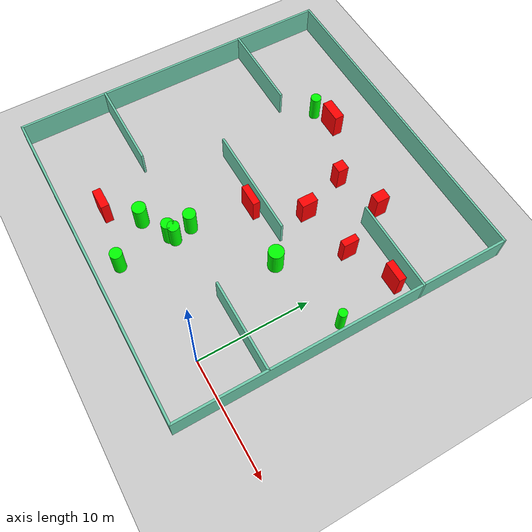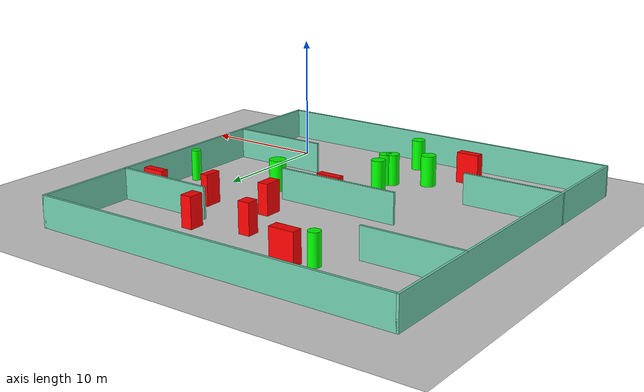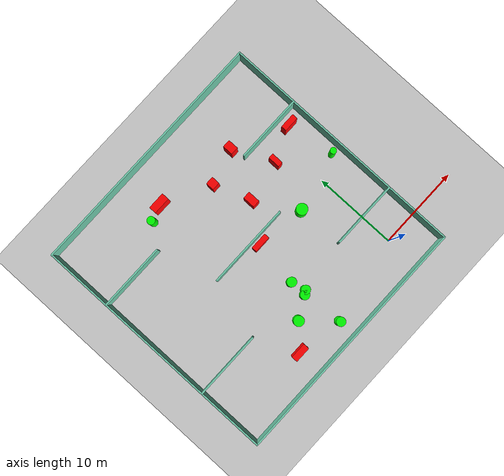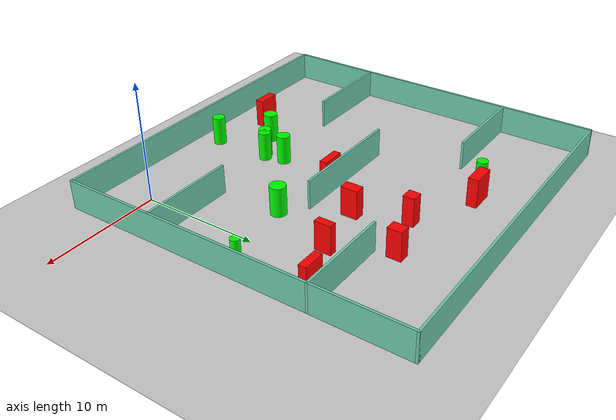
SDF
<sdf version="1.7">
 <world name="default">
  <light name="sun" type="directional">
   <pose>0 0 10 0 -0 0</pose>
   <diffuse>0.8 0.8 0.8 1</diffuse>
   <specular>0.2 0.2 0.2 1</specular>
   <attenuation>
    <range>1000</range>
    <constant>0.9</constant>
    <linear>0.01</linear>
    <quadratic>0.001</quadratic>
   </attenuation>
   <direction>-0.5 0.1 -0.9</direction>
   <spot><inner_angle>0</inner_angle><outer_angle>0</outer_angle><falloff>0</falloff></spot>
  </light>
  <model name="ground_plane">
   <static>1</static>
   <link name="link">
    <collision name="collision">
     <geometry><plane><normal>0 0 1</normal><size>100 100</size></plane></geometry>
     <surface>
      <contact><collide_bitmask>65535</collide_bitmask></contact>
      <friction><ode><mu>100</mu><mu2>50</mu2></ode></friction>
     </surface>
    </collision>
    <visual name="visual">
     <cast_shadows>0</cast_shadows>
     <geometry><plane><normal>0 0 1</normal><size>100 100</size></plane></geometry>
     <material>
      <script><uri>file://media/materials/scripts/gazebo.material</uri><name>Gazebo/Grey</name></script>
     </material>
    </visual>
   </link>
  </model>
  <gravity>0 0 -9.8</gravity>
  <magnetic_field>6e-06 2.3e-05 -4.2e-05</magnetic_field>
  <atmosphere type="adiabatic"/>
  <physics type="ode">
   <max_step_size>0.001</max_step_size>
   <real_time_factor>1</real_time_factor>
   <real_time_update_rate>1000</real_time_update_rate>
  </physics>
  <scene><ambient>0.4 0.4 0.4 1</ambient><background>0.7 0.7 0.7 1</background><shadows>1</shadows></scene>
  <spherical_coordinates>
   <surface_model>EARTH_WGS84</surface_model>
   <latitude_deg>0</latitude_deg>
   <longitude_deg>0</longitude_deg>
   <elevation>0</elevation>
   <heading_deg>0</heading_deg>
  </spherical_coordinates>
  <model name="my_base_walls">
   <link name="Wall_10">
    <collision name="Wall_10_Collision">
     <geometry><box><size>8.2 0.2 2.5</size></box></geometry>
     <pose>0 0 1.25 0 -0 0</pose>
    </collision>
    <visual name="Wall_10_Visual">
     <pose>0 0 1.25 0 -0 0</pose>
     <geometry><box><size>8.2 0.2 2.5</size></box></geometry>
     <material>
      <script><uri>file://media/materials/scripts/gazebo.material</uri><name>Gazebo/Grey</name></script>
      <ambient>0.435294 0.796078 0.67451 1</ambient>
     </material>
     <meta><layer>0</layer></meta>
    </visual>
    <pose>-11 -7 0 0 -0 0</pose>
   </link>
   <link name="Wall_12">
    <collision name="Wall_12_Collision">
     <geometry><box><size>8.2 0.2 2.5</size></box></geometry>
     <pose>0 0 1.25 0 -0 0</pose>
    </collision>
    <visual name="Wall_12_Visual">
     <pose>0 0 1.25 0 -0 0</pose>
     <geometry><box><size>8.2 0.2 2.5</size></box></geometry>
     <material>
      <script><uri>file://media/materials/scripts/gazebo.material</uri><name>Gazebo/Grey</name></script>
      <ambient>0.435294 0.796078 0.67451 1</ambient>
     </material>
     <meta><layer>0</layer></meta>
    </visual>
    <pose>-11 7 0 0 -0 0</pose>
   </link>
   <link name="Wall_14">
    <collision name="Wall_14_Collision">
     <geometry><box><size>8.2 0.2 2.5</size></box></geometry>
     <pose>0 0 1.25 0 -0 0</pose>
    </collision>
    <visual name="Wall_14_Visual">
     <pose>0 0 1.25 0 -0 0</pose>
     <geometry><box><size>8.2 0.2 2.5</size></box></geometry>
     <material>
      <script><uri>file://media/materials/scripts/gazebo.material</uri><name>Gazebo/Grey</name></script>
      <ambient>0.435294 0.796078 0.67451 1</ambient>
     </material>
     <meta><layer>0</layer></meta>
    </visual>
    <pose>11 7 0 0 -0 3.14159</pose>
   </link>
   <link name="Wall_16">
    <collision name="Wall_16_Collision">
     <geometry><box><size>10.2 0.2 2.5</size></box></geometry>
     <pose>0 0 1.25 0 -0 0</pose>
    </collision>
    <visual name="Wall_16_Visual">
     <pose>0 0 1.25 0 -0 0</pose>
     <geometry><box><size>10.2 0.2 2.5</size></box></geometry>
     <material>
      <script><uri>file://media/materials/scripts/gazebo.material</uri><name>Gazebo/Grey</name></script>
      <ambient>0.435294 0.796078 0.67451 1</ambient>
     </material>
     <meta><layer>0</layer></meta>
    </visual>
    <pose>0 0 0 0 -0 3.14159</pose>
   </link>
   <link name="Wall_2">
    <collision name="Wall_2_Collision">
     <geometry><box><size>30.2 0.2 2.5</size></box></geometry>
     <pose>0 0 1.25 0 -0 0</pose>
    </collision>
    <visual name="Wall_2_Visual">
     <pose>0 0 1.25 0 -0 0</pose>
     <geometry><box><size>30.2 0.2 2.5</size></box></geometry>
     <material>
      <script><uri>file://media/materials/scripts/gazebo.material</uri><name>Gazebo/Grey</name></script>
      <ambient>0.435294 0.796078 0.67451 1</ambient>
     </material>
     <meta><layer>0</layer></meta>
    </visual>
    <pose>0 -15 0 0 -0 3.14159</pose>
   </link>
   <link name="Wall_3">
    <collision name="Wall_3_Collision">
     <geometry><box><size>30.2 0.2 2.5</size></box></geometry>
     <pose>0 0 1.25 0 -0 0</pose>
    </collision>
    <visual name="Wall_3_Visual">
     <pose>0 0 1.25 0 -0 0</pose>
     <geometry><box><size>30.2 0.2 2.5</size></box></geometry>
     <material>
      <script><uri>file://media/materials/scripts/gazebo.material</uri><name>Gazebo/Grey</name></script>
      <ambient>0.435294 0.796078 0.67451 1</ambient>
     </material>
     <meta><layer>0</layer></meta>
    </visual>
    <pose>-15 0 0 0 -0 1.5708</pose>
   </link>
   <link name="Wall_4">
    <collision name="Wall_4_Collision">
     <geometry><box><size>30.2 0.2 2.5</size></box></geometry>
     <pose>0 0 1.25 0 -0 0</pose>
    </collision>
    <visual name="Wall_4_Visual">
     <pose>0 0 1.25 0 -0 0</pose>
     <geometry><box><size>30.2 0.2 2.5</size></box></geometry>
     <material>
      <script><uri>file://media/materials/scripts/gazebo.material</uri><name>Gazebo/Grey</name></script>
      <ambient>0.435294 0.796078 0.67451 1</ambient>
     </material>
     <meta><layer>0</layer></meta>
    </visual>
    <pose>0 15 0 0 -0 0</pose>
   </link>
   <link name="Wall_6">
    <collision name="Wall_6_Collision">
     <geometry><box><size>30.2 0.2 2.5</size></box></geometry>
     <pose>0 0 1.25 0 -0 0</pose>
    </collision>
    <visual name="Wall_6_Visual">
     <pose>0 0 1.25 0 -0 0</pose>
     <geometry><box><size>30.2 0.2 2.5</size></box></geometry>
     <material>
      <script><uri>file://media/materials/scripts/gazebo.material</uri><name>Gazebo/Grey</name></script>
      <ambient>0.435294 0.796078 0.67451 1</ambient>
     </material>
     <meta><layer>0</layer></meta>
    </visual>
    <pose>15 0 0 0 -0 1.5708</pose>
   </link>
   <link name="Wall_8">
    <collision name="Wall_8_Collision">
     <geometry><box><size>8.2 0.2 2.5</size></box></geometry>
     <pose>0 0 1.25 0 -0 0</pose>
    </collision>
    <visual name="Wall_8_Visual">
     <pose>0 0 1.25 0 -0 0</pose>
     <geometry><box><size>8.2 0.2 2.5</size></box></geometry>
     <material>
      <script><uri>file://media/materials/scripts/gazebo.material</uri><name>Gazebo/Grey</name></script>
      <ambient>0.435294 0.796078 0.67451 1</ambient>
     </material>
     <meta><layer>0</layer></meta>
    </visual>
    <pose>11 -7 0 0 -0 3.14159</pose>
   </link>
   <static>1</static>
   <pose>-11 11 0 0 -0 0</pose>
  </model>
  <model name="cylinder1">
   <static>1</static>
   <link name="link">
    <inertial>
     <mass>1</mass>
     <inertia><ixx>0.5</ixx><ixy>0</ixy><ixz>0</ixz><iyy>0.5</iyy><iyz>0</iyz><izz>1</izz></inertia>
    </inertial>
    <collision name="collision">
     <geometry><cylinder><radius>0.6102364128419271</radius><length>2.5</length></cylinder></geometry>
    </collision>
    <visual name="visual">
     <geometry><cylinder><radius>0.6102364128419271</radius><length>2.5</length></cylinder></geometry>
     <material>
      <ambient>0 1 0 1</ambient>
      <diffuse>0 1 0 1</diffuse>
      <specular>0.1 0.1 0.1 1</specular>
      <emissive>0 0 0 0</emissive>
     </material>
    </visual>
   </link>
   <pose>-13.288478711304903 1.5432368243101147 1.25 0 0 0</pose>
  </model>
  <model name="cylinder2">
   <static>1</static>
   <link name="link">
    <inertial>
     <mass>1</mass>
     <inertia><ixx>0.5</ixx><ixy>0</ixy><ixz>0</ixz><iyy>0.5</iyy><iyz>0</iyz><izz>1</izz></inertia>
    </inertial>
    <collision name="collision">
     <geometry><cylinder><radius>0.528931583499042</radius><length>2.5</length></cylinder></geometry>
    </collision>
    <visual name="visual">
     <geometry><cylinder><radius>0.528931583499042</radius><length>2.5</length></cylinder></geometry>
     <material>
      <ambient>0 1 0 1</ambient>
      <diffuse>0 1 0 1</diffuse>
      <specular>0.1 0.1 0.1 1</specular>
      <emissive>0 0 0 0</emissive>
     </material>
    </visual>
   </link>
   <pose>-10.293470751198072 3.2453936870340208 1.25 0 0 0</pose>
  </model>
  <model name="cylinder3">
   <static>1</static>
   <link name="link">
    <inertial>
     <mass>1</mass>
     <inertia><ixx>0.5</ixx><ixy>0</ixy><ixz>0</ixz><iyy>0.5</iyy><iyz>0</iyz><izz>1</izz></inertia>
    </inertial>
    <collision name="collision">
     <geometry><cylinder><radius>0.5652001706771371</radius><length>2.5</length></cylinder></geometry>
    </collision>
    <visual name="visual">
     <geometry><cylinder><radius>0.5652001706771371</radius><length>2.5</length></cylinder></geometry>
     <material>
      <ambient>0 1 0 1</ambient>
      <diffuse>0 1 0 1</diffuse>
      <specular>0.1 0.1 0.1 1</specular>
      <emissive>0 0 0 0</emissive>
     </material>
    </visual>
   </link>
   <pose>-10.708160396753412 4.926514522194241 1.25 0 0 0</pose>
  </model>
  <model name="cylinder4">
   <static>1</static>
   <link name="link">
    <inertial>
     <mass>1</mass>
     <inertia><ixx>0.5</ixx><ixy>0</ixy><ixz>0</ixz><iyy>0.5</iyy><iyz>0</iyz><izz>1</izz></inertia>
    </inertial>
    <collision name="collision">
     <geometry><cylinder><radius>0.4746966428981536</radius><length>2.5</length></cylinder></geometry>
    </collision>
    <visual name="visual">
     <geometry><cylinder><radius>0.4746966428981536</radius><length>2.5</length></cylinder></geometry>
     <material>
      <ambient>0 1 0 1</ambient>
      <diffuse>0 1 0 1</diffuse>
      <specular>0.1 0.1 0.1 1</specular>
      <emissive>0 0 0 0</emissive>
     </material>
    </visual>
   </link>
   <pose>-16.062996840979423 20.629727315066457 1.25 0 0 0</pose>
  </model>
  <model name="cylinder5">
   <static>1</static>
   <link name="link">
    <inertial>
     <mass>1</mass>
     <inertia><ixx>0.5</ixx><ixy>0</ixy><ixz>0</ixz><iyy>0.5</iyy><iyz>0</iyz><izz>1</izz></inertia>
    </inertial>
    <collision name="collision">
     <geometry><cylinder><radius>0.5425497366575273</radius><length>2.5</length></cylinder></geometry>
    </collision>
    <visual name="visual">
     <geometry><cylinder><radius>0.5425497366575273</radius><length>2.5</length></cylinder></geometry>
     <material>
      <ambient>0 1 0 1</ambient>
      <diffuse>0 1 0 1</diffuse>
      <specular>0.1 0.1 0.1 1</specular>
      <emissive>0 0 0 0</emissive>
     </material>
    </visual>
   </link>
   <pose>-10.772464013114352 2.92856817543465 1.25 0 0 0</pose>
  </model>
  <model name="cylinder6">
   <static>1</static>
   <link name="link">
    <inertial>
     <mass>1</mass>
     <inertia><ixx>0.5</ixx><ixy>0</ixy><ixz>0</ixz><iyy>0.5</iyy><iyz>0</iyz><izz>1</izz></inertia>
    </inertial>
    <collision name="collision">
     <geometry><cylinder><radius>0.6706606098673595</radius><length>2.5</length></cylinder></geometry>
    </collision>
    <visual name="visual">
     <geometry><cylinder><radius>0.6706606098673595</radius><length>2.5</length></cylinder></geometry>
     <material>
      <ambient>0 1 0 1</ambient>
      <diffuse>0 1 0 1</diffuse>
      <specular>0.1 0.1 0.1 1</specular>
      <emissive>0 0 0 0</emissive>
     </material>
    </visual>
   </link>
   <pose>-4.134569459134433 9.407700649315606 1.25 0 0 0</pose>
  </model>
  <model name="cylinder7">
   <static>1</static>
   <link name="link">
    <inertial>
     <mass>1</mass>
     <inertia><ixx>0.5</ixx><ixy>0</ixy><ixz>0</ixz><iyy>0.5</iyy><iyz>0</iyz><izz>1</izz></inertia>
    </inertial>
    <collision name="collision">
     <geometry><cylinder><radius>0.3765933177871764</radius><length>2.5</length></cylinder></geometry>
    </collision>
    <visual name="visual">
     <geometry><cylinder><radius>0.3765933177871764</radius><length>2.5</length></cylinder></geometry>
     <material>
      <ambient>0 1 0 1</ambient>
      <diffuse>0 1 0 1</diffuse>
      <specular>0.1 0.1 0.1 1</specular>
      <emissive>0 0 0 0</emissive>
     </material>
    </visual>
   </link>
   <pose>2.8900307833703636 11.18326344092256 1.25 0 0 0</pose>
  </model>
  <model name="cylinder8">
   <static>1</static>
   <link name="link">
    <inertial>
     <mass>1</mass>
     <inertia><ixx>0.5</ixx><ixy>0</ixy><ixz>0</ixz><iyy>0.5</iyy><iyz>0</iyz><izz>1</izz></inertia>
    </inertial>
    <collision name="collision">
     <geometry><cylinder><radius>0.5407304053464275</radius><length>2.5</length></cylinder></geometry>
    </collision>
    <visual name="visual">
     <geometry><cylinder><radius>0.5407304053464275</radius><length>2.5</length></cylinder></geometry>
     <material>
      <ambient>0 1 0 1</ambient>
      <diffuse>0 1 0 1</diffuse>
      <specular>0.1 0.1 0.1 1</specular>
      <emissive>0 0 0 0</emissive>
     </material>
    </visual>
   </link>
   <pose>-10.290860287536624 -1.8481871831370933 1.25 0 0 0</pose>
  </model>
  <model name="box1">
   <static>1</static>
   <link name="link">
    <inertial>
     <mass>1</mass>
     <inertia><ixx>0.083</ixx><ixy>0</ixy><ixz>0</ixz><iyy>0.083</iyy><iyz>0</iyz><izz>0.083</izz></inertia>
    </inertial>
    <collision name="collision">
     <geometry><box><size>0.9311011986921107 1.238657907187475 2.5</size></box></geometry>
    </collision>
    <visual name="visual">
     <geometry><box><size>0.9311011986921107 1.238657907187475 2.5</size></box></geometry>
     <material>
      <ambient>1 0 0 1</ambient>
      <diffuse>1 0 0 1</diffuse>
      <specular>0.1 0.1 0.1 1</specular>
      <emissive>0 0 0 0</emissive>
     </material>
    </visual>
    <sensor name="my_contact" type="contact">
     <contact><collision>box_collision</collision><topic>__default_topic__</topic></contact>
    </sensor>
   </link>
   <pose>-4.3799257955822934 19.69718308031592 1.25 0 0 0</pose>
  </model>
  <model name="box2">
   <static>1</static>
   <link name="link">
    <inertial>
     <mass>1</mass>
     <inertia><ixx>0.083</ixx><ixy>0</ixy><ixz>0</ixz><iyy>0.083</iyy><iyz>0</iyz><izz>0.083</izz></inertia>
    </inertial>
    <collision name="collision">
     <geometry><box><size>2.0366943474185675 0.6386890121781865 2.5</size></box></geometry>
    </collision>
    <visual name="visual">
     <geometry><box><size>2.0366943474185675 0.6386890121781865 2.5</size></box></geometry>
     <material>
      <ambient>1 0 0 1</ambient>
      <diffuse>1 0 0 1</diffuse>
      <specular>0.1 0.1 0.1 1</specular>
      <emissive>0 0 0 0</emissive>
     </material>
    </visual>
    <sensor name="my_contact" type="contact">
     <contact><collision>box_collision</collision><topic>__default_topic__</topic></contact>
    </sensor>
   </link>
   <pose>-9.850680277916112 10.277105274653024 1.25 0 0 0</pose>
  </model>
  <model name="box3">
   <static>1</static>
   <link name="link">
    <inertial>
     <mass>1</mass>
     <inertia><ixx>0.083</ixx><ixy>0</ixy><ixz>0</ixz><iyy>0.083</iyy><iyz>0</iyz><izz>0.083</izz></inertia>
    </inertial>
    <collision name="collision">
     <geometry><box><size>0.6156688374996554 1.408351218934792 2.5</size></box></geometry>
    </collision>
    <visual name="visual">
     <geometry><box><size>0.6156688374996554 1.408351218934792 2.5</size></box></geometry>
     <material>
      <ambient>1 0 0 1</ambient>
      <diffuse>1 0 0 1</diffuse>
      <specular>0.1 0.1 0.1 1</specular>
      <emissive>0 0 0 0</emissive>
     </material>
    </visual>
    <sensor name="my_contact" type="contact">
     <contact><collision>box_collision</collision><topic>__default_topic__</topic></contact>
    </sensor>
   </link>
   <pose>-2.104685663283572 15.119486303505777 1.25 0 0 0</pose>
  </model>
  <model name="box4">
   <static>1</static>
   <link name="link">
    <inertial>
     <mass>1</mass>
     <inertia><ixx>0.083</ixx><ixy>0</ixy><ixz>0</ixz><iyy>0.083</iyy><iyz>0</iyz><izz>0.083</izz></inertia>
    </inertial>
    <collision name="collision">
     <geometry><box><size>1.9076361519783753 0.7375641397885132 2.5</size></box></geometry>
    </collision>
    <visual name="visual">
     <geometry><box><size>1.9076361519783753 0.7375641397885132 2.5</size></box></geometry>
     <material>
      <ambient>1 0 0 1</ambient>
      <diffuse>1 0 0 1</diffuse>
      <specular>0.1 0.1 0.1 1</specular>
      <emissive>0 0 0 0</emissive>
     </material>
    </visual>
    <sensor name="my_contact" type="contact">
     <contact><collision>box_collision</collision><topic>__default_topic__</topic></contact>
    </sensor>
   </link>
   <pose>-15.689560459931922 -0.8517949781638716 1.25 0 0 0</pose>
  </model>
  <model name="box5">
   <static>1</static>
   <link name="link">
    <inertial>
     <mass>1</mass>
     <inertia><ixx>0.083</ixx><ixy>0</ixy><ixz>0</ixz><iyy>0.083</iyy><iyz>0</iyz><izz>0.083</izz></inertia>
    </inertial>
    <collision name="collision">
     <geometry><box><size>2.0722934884359496 0.8808914945556814 2.5</size></box></geometry>
    </collision>
    <visual name="visual">
     <geometry><box><size>2.0722934884359496 0.8808914945556814 2.5</size></box></geometry>
     <material>
      <ambient>1 0 0 1</ambient>
      <diffuse>1 0 0 1</diffuse>
      <specular>0.1 0.1 0.1 1</specular>
      <emissive>0 0 0 0</emissive>
     </material>
    </visual>
    <sensor name="my_contact" type="contact">
     <contact><collision>box_collision</collision><topic>__default_topic__</topic></contact>
    </sensor>
   </link>
   <pose>-14.110426286242612 21.268835501790484 1.25 0 0 0</pose>
  </model>
  <model name="box6">
   <static>1</static>
   <link name="link">
    <inertial>
     <mass>1</mass>
     <inertia><ixx>0.083</ixx><ixy>0</ixy><ixz>0</ixz><iyy>0.083</iyy><iyz>0</iyz><izz>0.083</izz></inertia>
    </inertial>
    <collision name="collision">
     <geometry><box><size>1.8310662108164752 0.6610076948552603 2.5</size></box></geometry>
    </collision>
    <visual name="visual">
     <geometry><box><size>1.8310662108164752 0.6610076948552603 2.5</size></box></geometry>
     <material>
      <ambient>1 0 0 1</ambient>
      <diffuse>1 0 0 1</diffuse>
      <specular>0.1 0.1 0.1 1</specular>
      <emissive>0 0 0 0</emissive>
     </material>
    </visual>
    <sensor name="my_contact" type="contact">
     <contact><collision>box_collision</collision><topic>__default_topic__</topic></contact>
    </sensor>
   </link>
   <pose>1.9510536989042109 16.798605861058657 1.25 0 0 0</pose>
  </model>
  <model name="box7">
   <static>1</static>
   <link name="link">
    <inertial>
     <mass>1</mass>
     <inertia><ixx>0.083</ixx><ixy>0</ixy><ixz>0</ixz><iyy>0.083</iyy><iyz>0</iyz><izz>0.083</izz></inertia>
    </inertial>
    <collision name="collision">
     <geometry><box><size>0.884295618815073 1.462640418537535 2.5</size></box></geometry>
    </collision>
    <visual name="visual">
     <geometry><box><size>0.884295618815073 1.462640418537535 2.5</size></box></geometry>
     <material>
      <ambient>1 0 0 1</ambient>
      <diffuse>1 0 0 1</diffuse>
      <specular>0.1 0.1 0.1 1</specular>
      <emissive>0 0 0 0</emissive>
     </material>
    </visual>
    <sensor name="my_contact" type="contact">
     <contact><collision>box_collision</collision><topic>__default_topic__</topic></contact>
    </sensor>
   </link>
   <pose>-7.050655428184005 14.16740912823466 1.25 0 0 0</pose>
  </model>
  <model name="box8">
   <static>1</static>
   <link name="link">
    <inertial>
     <mass>1</mass>
     <inertia><ixx>0.083</ixx><ixy>0</ixy><ixz>0</ixz><iyy>0.083</iyy><iyz>0</iyz><izz>0.083</izz></inertia>
    </inertial>
    <collision name="collision">
     <geometry><box><size>0.9758173238309983 0.9829701098350863 2.5</size></box></geometry>
    </collision>
    <visual name="visual">
     <geometry><box><size>0.9758173238309983 0.9829701098350863 2.5</size></box></geometry>
     <material>
      <ambient>1 0 0 1</ambient>
      <diffuse>1 0 0 1</diffuse>
      <specular>0.1 0.1 0.1 1</specular>
      <emissive>0 0 0 0</emissive>
     </material>
    </visual>
    <sensor name="my_contact" type="contact">
     <contact><collision>box_collision</collision><topic>__default_topic__</topic></contact>
    </sensor>
   </link>
   <pose>-8.584008076459753 18.44547348865293 1.25 0 0 0</pose>
  </model>
 </world>
</sdf>
